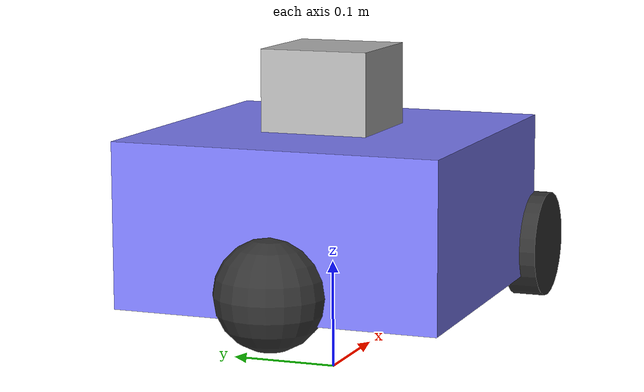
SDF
<?xml version="1.0" ?>
<sdf version="1.8">
    <model name='diff_drive'  canonical_link="base_link">

      <link name='base_link'>
      </link>
      <joint name='base_joint' type='fixed'>
        <parent>base_link</parent>
        <child>chassis</child>
      </joint>

      <link name='chassis'>
        <pose>0 0 0.15 0 -0 0</pose>
        <inertial>
          <mass>1</mass>
          <inertia>
              <ixx>0.009375</ixx>
              <ixy>0</ixy>
              <ixz>0</ixz>
              <iyy>0.015</iyy>
              <iyz>0</iyz>
              <izz>0.009375</izz>
          </inertia>
        </inertial>
        <visual name='visual_chassis'>
          <geometry>
            <box>
              <size>0.3 0.3 0.15</size>
            </box>
          </geometry>
          <material>
            <ambient>0.5 0.5 1.0 1</ambient>
            <diffuse>0.5 0.5 1.0 1</diffuse>
            <specular>0.0 0.0 1.0 1</specular>
          </material>
        </visual>
        <collision name='collision_chassis'>
          <geometry>
            <box>
              <size>0.3 0.3 0.15</size>
            </box>
          </geometry>
        </collision>
      </link>

      <link name='left_wheel'>
        <pose>0.15 0.15 0.10 -1.5707 0 0</pose>
        <inertial>
          <mass>0.3</mass>
          <inertia>
              <ixx>0.0012</ixx>
              <ixy>0</ixy>
              <ixz>0</ixz>
              <iyy>0.0012</iyy>
              <iyz>0</iyz>
              <izz>0.0012</izz>
          </inertia>
        </inertial>
        <visual name='visual_left_wheel'>
          <geometry>
            <cylinder>
              <radius>0.05</radius>
              <length>0.03</length>
            </cylinder>
          </geometry>
          <material>
            <ambient>0.2 0.2 0.2 1</ambient>
            <diffuse>0.2 0.2 0.2 1</diffuse>
            <specular>0.2 0.2 0.2 1</specular>
          </material>
        </visual>
        <collision name='collision_left_wheel'>
          <geometry>
            <cylinder>
              <radius>0.05</radius>
              <length>0.03</length>
            </cylinder>
          </geometry>
        </collision>
      </link>

      <link name='right_wheel'>
        <pose>0.15 -0.15 0.10 -1.5707 0 0</pose>
        <inertial>
          <mass>0.3</mass>
          <inertia>
              <ixx>0.0012</ixx>
              <ixy>0</ixy>
              <ixz>0</ixz>
              <iyy>0.0012</iyy>
              <iyz>0</iyz>
              <izz>0.0012</izz>
          </inertia>
        </inertial>
        <visual name='visual_right_wheel'>
          <geometry>
            <cylinder>
              <radius>0.05</radius>
              <length>0.03</length>
            </cylinder>
          </geometry>
          <material>
            <ambient>0.2 0.2 0.2 1</ambient>
            <diffuse>0.2 0.2 0.2 1</diffuse>
            <specular>0.2 0.2 0.2 1</specular>
          </material>
        </visual>
        <collision name='collision_right_wheel'>
          <geometry>
            <cylinder>
              <radius>0.05</radius>
              <length>0.03</length>
            </cylinder>
          </geometry>
        </collision>
      </link>

      <link name='caster'>
        <pose>-0.15 0 0.10 0 -0 0</pose>
        <inertial>
          <mass>0.1</mass>
          <inertia>
            <ixx>0.0001</ixx>
            <ixy>0</ixy>
            <ixz>0</ixz>
            <iyy>0.0001</iyy>
            <iyz>0</iyz>
            <izz>0.0001</izz>
          </inertia>
        </inertial>
        <visual name='visual_caster'>
          <geometry>
            <sphere>
              <radius>0.05</radius>
            </sphere>
          </geometry>
          <material>
            <ambient>0.2 0.2 0.2 1</ambient>
            <diffuse>0.2 0.2 0.2 1</diffuse>
            <specular>0.2 0.2 0.2 1</specular>
          </material>
        </visual>
        <collision name='collision_caster'>
          <geometry>
            <sphere>
              <radius>0.05</radius>
            </sphere>
          </geometry>
        </collision>
      </link>

      <link name="lidar_link">
        <pose>0 0 0.25 0 0 0</pose>
        <inertial>
          <mass>0.1</mass>
          <inertia>
            <ixx>0.000166667</ixx>
            <iyy>0.000166667</iyy>
            <izz>0.000166667</izz>
          </inertia>
        </inertial>
        <collision name="collision">
          <geometry>
            <box>
              <size>0.1 0.1 0.1</size>
            </box>
          </geometry>
        </collision>
        <visual name="visual">
          <geometry>
            <box>
              <size>0.1 0.1 0.1</size>
            </box>
          </geometry>
        </visual>
        <sensor name='gpu_lidar' type='gpu_lidar'>
          <pose>0 0 0 0 0 0</pose>
          <topic>scan</topic>
          <ignition_frame_id>diff_drive/lidar_link</ignition_frame_id>
          <update_rate>10</update_rate>
          <lidar>
            <scan>
              <horizontal>
                <samples>360</samples>
                <resolution>1</resolution>
                <min_angle>-3.14</min_angle>
                <max_angle>3.14</max_angle>
              </horizontal>
              <vertical>
                <samples>1</samples>
                <resolution>1</resolution>
                <min_angle>0.0</min_angle>
                <max_angle>0.0</max_angle>
              </vertical>
            </scan>
            <range>
              <min>0.08</min>
              <max>12.0</max>
              <resolution>0.01</resolution>
            </range>
            <noise>
              <type>gaussian</type>
              <mean>0.0</mean>
              <stddev>0.01</stddev>
            </noise>
          </lidar>
          <visualize>true</visualize>
        </sensor>
      </link>

      <link name="camera_link">
        <pose>0.15 0 0.15 0 0 0</pose>
        <inertial>
          <mass>0.1</mass>
          <inertia>
            <ixx>0.000166667</ixx>
            <iyy>0.000166667</iyy>
            <izz>0.000166667</izz>
          </inertia>
        </inertial>
        <collision name="collision">
          <geometry>
            <box>
              <size>0.05 0.05 0.05</size>
            </box>
          </geometry>
        </collision>
        <visual name="visual">
          <geometry>
            <box>
              <size>0.05 0.05 0.05</size>
            </box>
          </geometry>
        </visual>
        <sensor name="camera" type="camera">
          <camera>
            <horizontal_fov>1.417</horizontal_fov>
            <image>
              <width>1280</width>
              <height>800</height>
            </image>
            <clip>
              <near>0.1</near>
              <far>200</far>
            </clip>
            <noise>
              <type>gaussian</type>
              <mean>0.0</mean>
              <stddev>0.01</stddev>
            </noise>
          </camera>
          <always_on>1</always_on>
          <update_rate>120</update_rate>
          <visualize>true</visualize>
          <topic>camera</topic>
        </sensor>
      </link>

      <joint name='camera_joint' type='fixed'>
        <parent>chassis</parent>
        <child>camera_link</child>
      </joint>

      <joint name='lidar_joint' type='fixed'>
        <parent>chassis</parent>
        <child>lidar_link</child>
      </joint>

      <joint name='left_wheel_joint' type='revolute'>
        <parent>chassis</parent>
        <child>left_wheel</child>
        <axis>
          <xyz>0 0 1</xyz>
          <limit>
            <lower>-1.79769e+308</lower>
            <upper>1.79769e+308</upper>
          </limit>
        </axis>
      </joint>

      <joint name='right_wheel_joint' type='revolute'>
        <parent>chassis</parent>
        <child>right_wheel</child>
        <axis>
          <xyz>0 0 1</xyz>
          <limit>
            <lower>-1.79769e+308</lower>
            <upper>1.79769e+308</upper>
          </limit>
        </axis>
      </joint>

      <joint name='caster_wheel' type='ball'>
        <parent>chassis</parent>
        <child>caster</child>
      </joint>

      <plugin
        filename="ignition-gazebo-diff-drive-system"
        name="ignition::gazebo::systems::DiffDrive">
        <left_joint>left_wheel_joint</left_joint>
        <right_joint>right_wheel_joint</right_joint>
        <wheel_separation>0.3</wheel_separation>
        <wheel_radius>0.05</wheel_radius>
        <odom_publish_frequency>1</odom_publish_frequency>
        <max_linear_acceleration>1</max_linear_acceleration>
        <min_linear_acceleration>-1</min_linear_acceleration>
        <max_angular_acceleration>2</max_angular_acceleration>
        <min_angular_acceleration>-2</min_angular_acceleration>
        <max_linear_velocity>0.5</max_linear_velocity>
        <min_linear_velocity>-0.5</min_linear_velocity>
        <max_angular_velocity>1</max_angular_velocity>
        <min_angular_velocity>-1</min_angular_velocity>
      </plugin>
    </model>
</sdf>
